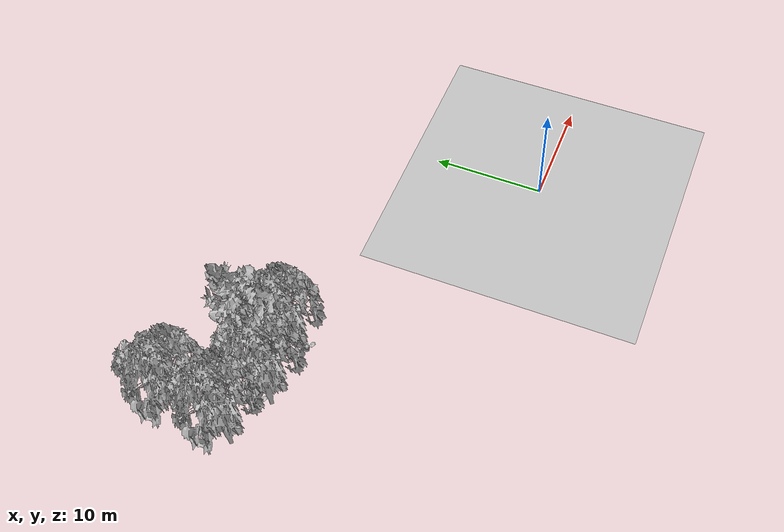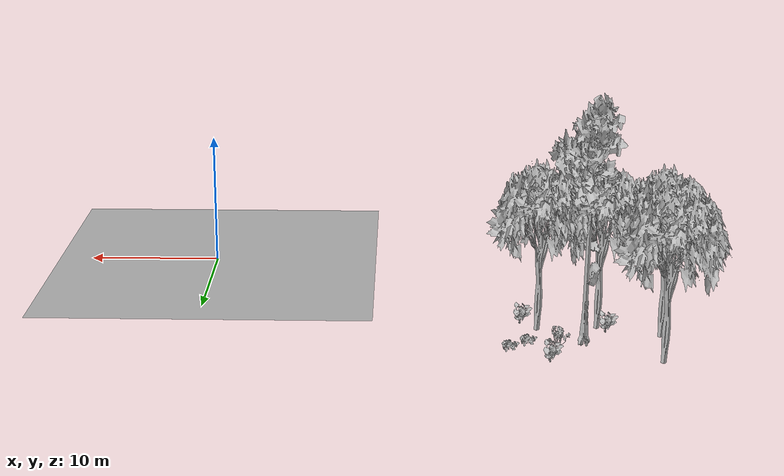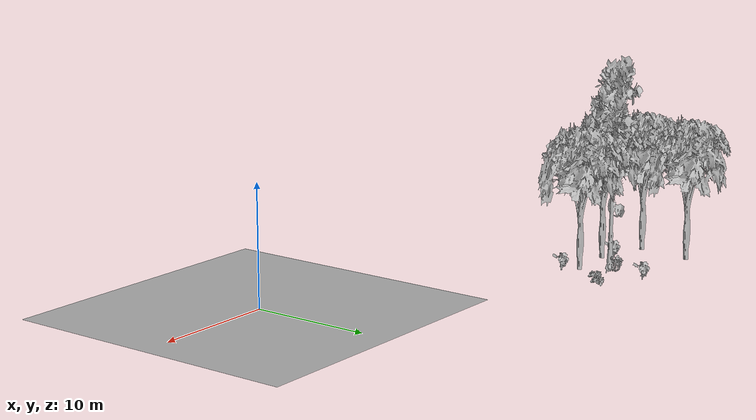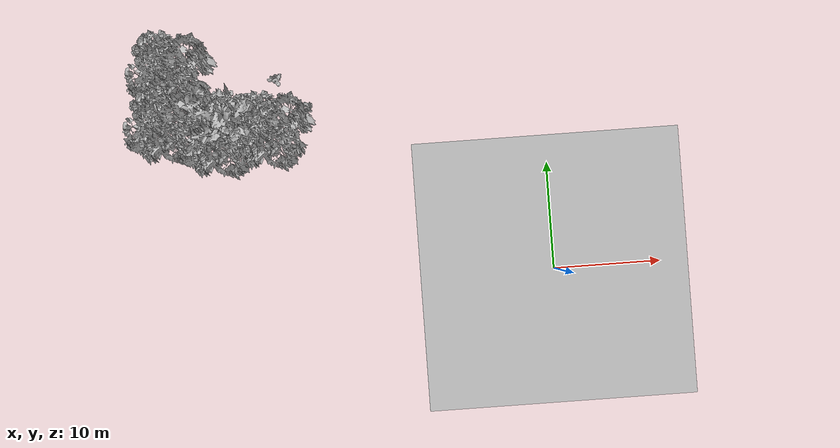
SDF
<sdf version="1.7">
 <world name="default">
  <model name="ground_plane">
   <static>1</static>
   <link name="link">
    <collision name="collision">
     <pose>-50 0 0 0 -0 0</pose>
     <geometry><plane><normal>0 0 1</normal><size>80 80</size></plane></geometry>
     <surface><contact><ode><min_depth>0.01</min_depth><max_vel>0</max_vel></ode></contact></surface>
    </collision>
    <visual name="grass">
     <cast_shadows>0</cast_shadows>
     <geometry>
      <mesh>
       <scale>0.46714285714285714 0.46714285714285714 0.1</scale>
       <uri>file://grass_plane/meshes/grass_plane.dae</uri>
      </mesh>
     </geometry>
    </visual>
   </link>
  </model>
  <model name="Tree 87">
   <static>1</static>
   <pose>-27.463806947193305 14.847767091160406 0 1.57079 -0 0</pose>
   <link name="link">
    <collision name="collision">
     <geometry><mesh><scale>3.5 5 3.5</scale><uri>model://tree_9/meshes/tree_9.obj</uri></mesh></geometry>
    </collision>
    <visual name="visual">
     <geometry><mesh><scale>3.5 5 3.5</scale><uri>model://tree_9/meshes/tree_9.obj</uri></mesh></geometry>
    </visual>
   </link>
  </model>
  <model name="Tree 243">
   <static>1</static>
   <pose>-24.341679984029227 13.821659534676023 0 1.57079 -0 0</pose>
   <link name="link">
    <collision name="collision">
     <geometry><mesh><scale>3.5 5 3.5</scale><uri>model://tree_2/meshes/tree_2.obj</uri></mesh></geometry>
    </collision>
    <visual name="visual">
     <geometry><mesh><scale>3.5 5 3.5</scale><uri>model://tree_2/meshes/tree_2.obj</uri></mesh></geometry>
    </visual>
   </link>
  </model>
  <model name="Tree 343">
   <static>1</static>
   <pose>-32.86877593372502 14.858065216247411 0 1.57079 -0 0</pose>
   <link name="link">
    <collision name="collision">
     <geometry><mesh><scale>3.5 5 3.5</scale><uri>model://tree_2/meshes/tree_2.obj</uri></mesh></geometry>
    </collision>
    <visual name="visual">
     <geometry><mesh><scale>3.5 5 3.5</scale><uri>model://tree_2/meshes/tree_2.obj</uri></mesh></geometry>
    </visual>
   </link>
  </model>
  <model name="Tree 423">
   <static>1</static>
   <pose>-32.3806381631166 19.350346128518304 0 1.57079 -0 0</pose>
   <link name="link">
    <collision name="collision">
     <geometry><mesh><scale>3.5 5 3.5</scale><uri>model://tree_2/meshes/tree_2.obj</uri></mesh></geometry>
    </collision>
    <visual name="visual">
     <geometry><mesh><scale>3.5 5 3.5</scale><uri>model://tree_2/meshes/tree_2.obj</uri></mesh></geometry>
    </visual>
   </link>
  </model>
  <model name="Tree 584">
   <static>1</static>
   <pose>-28.596505089281056 13.414097827570885 0 1.57079 -0 0</pose>
   <link name="link">
    <collision name="collision">
     <geometry><mesh><scale>3.5 5 3.5</scale><uri>model://tree_2/meshes/tree_2.obj</uri></mesh></geometry>
    </collision>
    <visual name="visual">
     <geometry><mesh><scale>3.5 5 3.5</scale><uri>model://tree_2/meshes/tree_2.obj</uri></mesh></geometry>
    </visual>
   </link>
  </model>
  <model name="Bush 160">
   <static>1</static>
   <pose>-25.52836698470677 16.56083994087092 0 1.57079 -0 0</pose>
   <link name="link">
    <collision name="collision">
     <geometry><mesh><scale>2 2 2</scale><uri>model://bush_4/meshes/bush_4.obj</uri></mesh></geometry>
     <surface><contact><collide_without_contact>false</collide_without_contact></contact></surface>
    </collision>
    <visual name="visual">
     <geometry><mesh><scale>2 2 2</scale><uri>model://bush_4/meshes/bush_4.obj</uri></mesh></geometry>
    </visual>
   </link>
  </model>
  <model name="Bush 191">
   <static>1</static>
   <pose>-29.039296733630522 14.248071925527753 0 1.57079 -0 0</pose>
   <link name="link">
    <collision name="collision">
     <geometry><mesh><scale>2 2 2</scale><uri>model://bush_0/meshes/bush_0.obj</uri></mesh></geometry>
     <surface><contact><collide_without_contact>false</collide_without_contact></contact></surface>
    </collision>
    <visual name="visual">
     <geometry><mesh><scale>2 2 2</scale><uri>model://bush_0/meshes/bush_0.obj</uri></mesh></geometry>
    </visual>
   </link>
  </model>
  <model name="Bush 253">
   <static>1</static>
   <pose>-22.17673700960522 16.81933505061906 0 1.57079 -0 0</pose>
   <link name="link">
    <collision name="collision">
     <geometry><mesh><scale>2 2 2</scale><uri>model://bush_2/meshes/bush_2.obj</uri></mesh></geometry>
     <surface><contact><collide_without_contact>false</collide_without_contact></contact></surface>
    </collision>
    <visual name="visual">
     <geometry><mesh><scale>2 2 2</scale><uri>model://bush_2/meshes/bush_2.obj</uri></mesh></geometry>
    </visual>
   </link>
  </model>
  <model name="Bush 504">
   <static>1</static>
   <pose>-24.690671850523636 19.50033607159518 0 1.57079 -0 0</pose>
   <link name="link">
    <collision name="collision">
     <geometry><mesh><scale>2 2 2</scale><uri>model://bush_0/meshes/bush_0.obj</uri></mesh></geometry>
     <surface><contact><collide_without_contact>false</collide_without_contact></contact></surface>
    </collision>
    <visual name="visual">
     <geometry><mesh><scale>2 2 2</scale><uri>model://bush_0/meshes/bush_0.obj</uri></mesh></geometry>
    </visual>
   </link>
  </model>
  <model name="Bush 531">
   <static>1</static>
   <pose>-23.494958303619633 15.802696904332961 0 1.57079 -0 0</pose>
   <link name="link">
    <collision name="collision">
     <geometry><mesh><scale>2 2 2</scale><uri>model://bush_2/meshes/bush_2.obj</uri></mesh></geometry>
     <surface><contact><collide_without_contact>false</collide_without_contact></contact></surface>
    </collision>
    <visual name="visual">
     <geometry><mesh><scale>2 2 2</scale><uri>model://bush_2/meshes/bush_2.obj</uri></mesh></geometry>
    </visual>
   </link>
  </model>
  <model name="Bush 543">
   <static>1</static>
   <pose>-23.137442601368736 12.794373270906483 0 1.57079 -0 0</pose>
   <link name="link">
    <collision name="collision">
     <geometry><mesh><scale>2 2 2</scale><uri>model://bush_0/meshes/bush_0.obj</uri></mesh></geometry>
     <surface><contact><collide_without_contact>false</collide_without_contact></contact></surface>
    </collision>
    <visual name="visual">
     <geometry><mesh><scale>2 2 2</scale><uri>model://bush_0/meshes/bush_0.obj</uri></mesh></geometry>
    </visual>
   </link>
  </model>
 </world>
</sdf>
